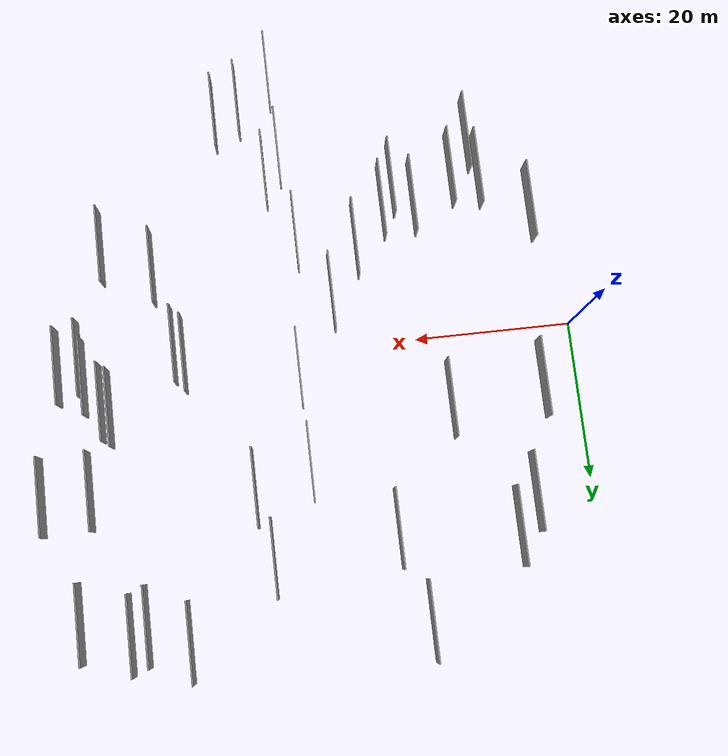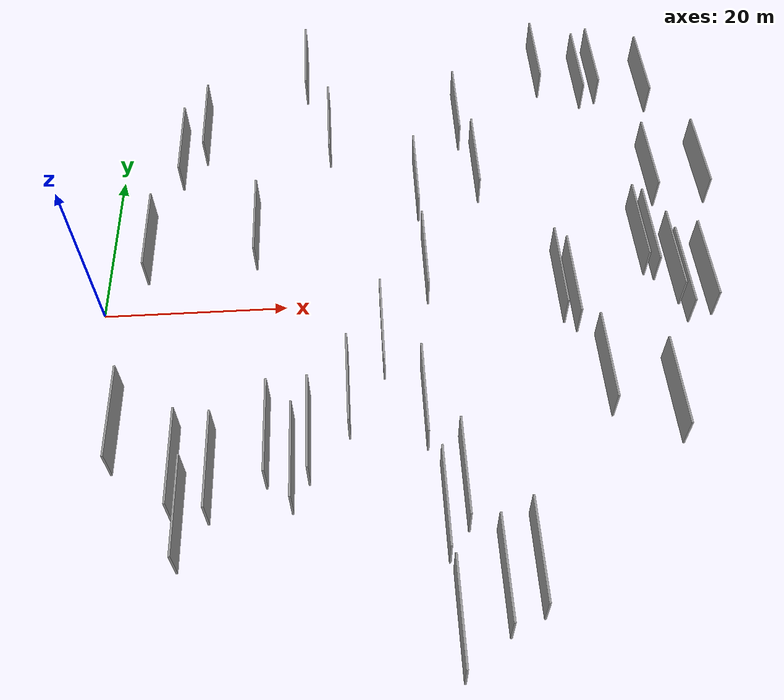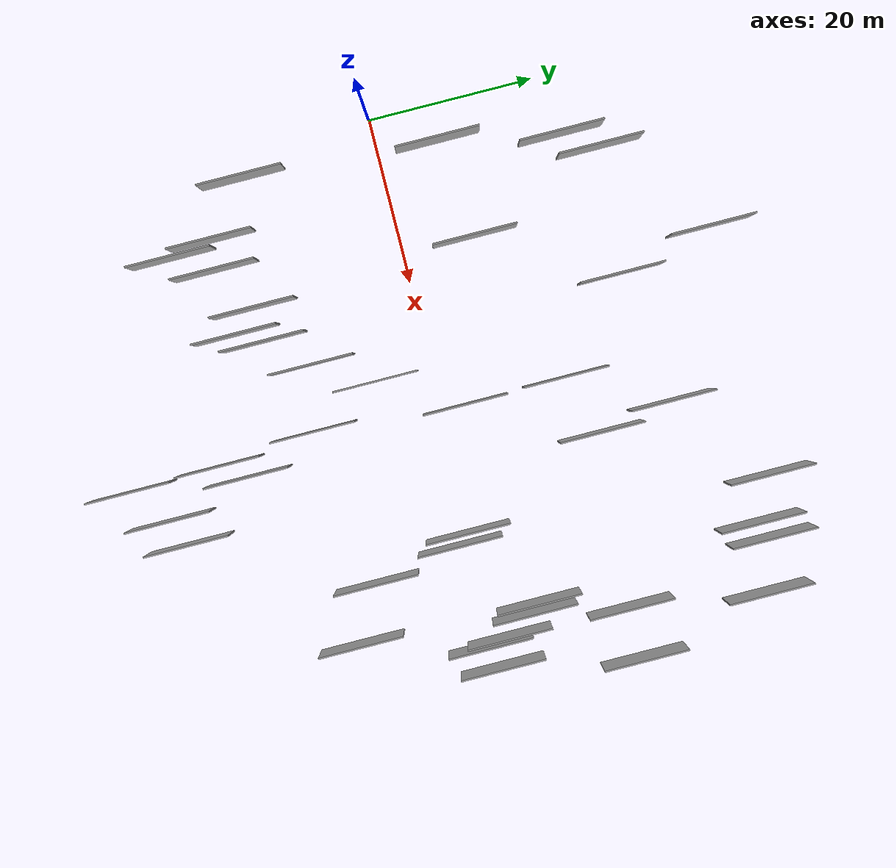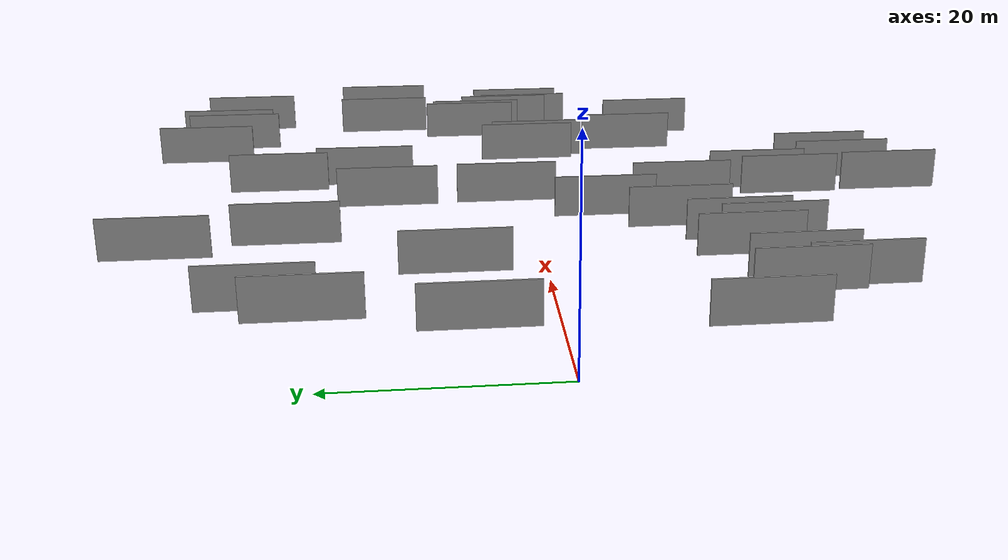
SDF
<sdf version="1.6">
 <world name="default">
  <scene>
   <sky><clouds><speed>12</speed></clouds></sky>
   <ambient>0.4 0.4 0.4 1</ambient>
   <background>0.7 0.7 0.7 1</background>
   <shadows>1</shadows>
  </scene>
  <gravity>0 0 -9.8066</gravity>
  <magnetic_field>6e-06 2.3e-05 -4.2e-05</magnetic_field>
  <physics default="0" name="default_physics" type="ode">
   <ode>
    <solver>
     <type>quick</type>
     <iters>10</iters>
     <sor>1.0</sor>
     <use_dynamic_moi_rescaling>0</use_dynamic_moi_rescaling>
    </solver>
    <constraints>
     <cfm>0</cfm>
     <erp>0.2</erp>
     <contact_max_correcting_vel>100</contact_max_correcting_vel>
     <contact_surface_layer>0.001</contact_surface_layer>
    </constraints>
   </ode>
   <max_step_size>0.004</max_step_size>
   <real_time_factor>1</real_time_factor>
   <real_time_update_rate>250</real_time_update_rate>
  </physics>
  <light name="sun" type="directional">
   <pose>0 0 10 0 0 0</pose>
   <diffuse>0.8 0.8 0.8 1</diffuse>
   <specular>0.2 0.2 0.2 1</specular>
   <attenuation>
    <range>1000</range>
    <constant>0.9</constant>
    <linear>0.01</linear>
    <quadratic>0.001</quadratic>
   </attenuation>
   <direction>-0.5 0.1 -0.9</direction>
  </light>
  <model name="grey_wall_1">
   <static>1</static>
   <pose>13.2933 -21.4593 2.5 0.000000 0.000000 1.570796</pose>
   <link name="link">
    <pose>0 0 2.00 0 0 0</pose>
    <collision name="collision"><geometry><box><size>10.00 0.2 4.00</size></box></geometry></collision>
    <visual name="visual">
     <cast_shadows>0</cast_shadows>
     <geometry><box><size>10.00 0.2 4.00</size></box></geometry>
     <material>
      <script>
       <uri>model://grey_wall/materials/scripts</uri>
       <uri>model://grey_wall/materials/textures</uri>
       <name>vrc/grey_wall</name>
      </script>
     </material>
    </visual>
   </link>
  </model>
  <model name="grey_wall_2">
   <static>1</static>
   <pose>65.8893 -0.6012 2.5 0.000000 0.000000 1.570796</pose>
   <link name="link">
    <pose>0 0 2.00 0 0 0</pose>
    <collision name="collision"><geometry><box><size>10.00 0.2 4.00</size></box></geometry></collision>
    <visual name="visual">
     <cast_shadows>0</cast_shadows>
     <geometry><box><size>10.00 0.2 4.00</size></box></geometry>
     <material>
      <script>
       <uri>model://grey_wall/materials/scripts</uri>
       <uri>model://grey_wall/materials/textures</uri>
       <name>vrc/grey_wall</name>
      </script>
     </material>
    </visual>
   </link>
  </model>
  <model name="grey_wall_3">
   <static>1</static>
   <pose>35.5225 2.7296 2.5 0.000000 0.000000 1.570796</pose>
   <link name="link">
    <pose>0 0 2.00 0 0 0</pose>
    <collision name="collision"><geometry><box><size>10.00 0.2 4.00</size></box></geometry></collision>
    <visual name="visual">
     <cast_shadows>0</cast_shadows>
     <geometry><box><size>10.00 0.2 4.00</size></box></geometry>
     <material>
      <script>
       <uri>model://grey_wall/materials/scripts</uri>
       <uri>model://grey_wall/materials/textures</uri>
       <name>vrc/grey_wall</name>
      </script>
     </material>
    </visual>
   </link>
  </model>
  <model name="grey_wall_4">
   <static>1</static>
   <pose>63.1721 -1.3532 2.5 0.000000 0.000000 1.570796</pose>
   <link name="link">
    <pose>0 0 2.00 0 0 0</pose>
    <collision name="collision"><geometry><box><size>10.00 0.2 4.00</size></box></geometry></collision>
    <visual name="visual">
     <cast_shadows>0</cast_shadows>
     <geometry><box><size>10.00 0.2 4.00</size></box></geometry>
     <material>
      <script>
       <uri>model://grey_wall/materials/scripts</uri>
       <uri>model://grey_wall/materials/textures</uri>
       <name>vrc/grey_wall</name>
      </script>
     </material>
    </visual>
   </link>
  </model>
  <model name="grey_wall_5">
   <static>1</static>
   <pose>7.8919 21.2013 2.5 0.000000 0.000000 1.570796</pose>
   <link name="link">
    <pose>0 0 2.00 0 0 0</pose>
    <collision name="collision"><geometry><box><size>10.00 0.2 4.00</size></box></geometry></collision>
    <visual name="visual">
     <cast_shadows>0</cast_shadows>
     <geometry><box><size>10.00 0.2 4.00</size></box></geometry>
     <material>
      <script>
       <uri>model://grey_wall/materials/scripts</uri>
       <uri>model://grey_wall/materials/textures</uri>
       <name>vrc/grey_wall</name>
      </script>
     </material>
    </visual>
   </link>
  </model>
  <model name="grey_wall_6">
   <static>1</static>
   <pose>35.3623 -26.5021 2.5 0.000000 0.000000 1.570796</pose>
   <link name="link">
    <pose>0 0 2.00 0 0 0</pose>
    <collision name="collision"><geometry><box><size>10.00 0.2 4.00</size></box></geometry></collision>
    <visual name="visual">
     <cast_shadows>0</cast_shadows>
     <geometry><box><size>10.00 0.2 4.00</size></box></geometry>
     <material>
      <script>
       <uri>model://grey_wall/materials/scripts</uri>
       <uri>model://grey_wall/materials/textures</uri>
       <name>vrc/grey_wall</name>
      </script>
     </material>
    </visual>
   </link>
  </model>
  <model name="grey_wall_7">
   <static>1</static>
   <pose>22.6817 -18.0327 2.5 0.000000 0.000000 1.570796</pose>
   <link name="link">
    <pose>0 0 2.00 0 0 0</pose>
    <collision name="collision"><geometry><box><size>10.00 0.2 4.00</size></box></geometry></collision>
    <visual name="visual">
     <cast_shadows>0</cast_shadows>
     <geometry><box><size>10.00 0.2 4.00</size></box></geometry>
     <material>
      <script>
       <uri>model://grey_wall/materials/scripts</uri>
       <uri>model://grey_wall/materials/textures</uri>
       <name>vrc/grey_wall</name>
      </script>
     </material>
    </visual>
   </link>
  </model>
  <model name="grey_wall_8">
   <static>1</static>
   <pose>22.5826 35.2984 2.5 0.000000 0.000000 1.570796</pose>
   <link name="link">
    <pose>0 0 2.00 0 0 0</pose>
    <collision name="collision"><geometry><box><size>10.00 0.2 4.00</size></box></geometry></collision>
    <visual name="visual">
     <cast_shadows>0</cast_shadows>
     <geometry><box><size>10.00 0.2 4.00</size></box></geometry>
     <material>
      <script>
       <uri>model://grey_wall/materials/scripts</uri>
       <uri>model://grey_wall/materials/textures</uri>
       <name>vrc/grey_wall</name>
      </script>
     </material>
    </visual>
   </link>
  </model>
  <model name="grey_wall_9">
   <static>1</static>
   <pose>30.3862 -6.6031 2.5 0.000000 0.000000 1.570796</pose>
   <link name="link">
    <pose>0 0 2.00 0 0 0</pose>
    <collision name="collision"><geometry><box><size>10.00 0.2 4.00</size></box></geometry></collision>
    <visual name="visual">
     <cast_shadows>0</cast_shadows>
     <geometry><box><size>10.00 0.2 4.00</size></box></geometry>
     <material>
      <script>
       <uri>model://grey_wall/materials/scripts</uri>
       <uri>model://grey_wall/materials/textures</uri>
       <name>vrc/grey_wall</name>
      </script>
     </material>
    </visual>
   </link>
  </model>
  <model name="grey_wall_10">
   <static>1</static>
   <pose>34.2135 -14.9727 2.5 0.000000 0.000000 1.570796</pose>
   <link name="link">
    <pose>0 0 2.00 0 0 0</pose>
    <collision name="collision"><geometry><box><size>10.00 0.2 4.00</size></box></geometry></collision>
    <visual name="visual">
     <cast_shadows>0</cast_shadows>
     <geometry><box><size>10.00 0.2 4.00</size></box></geometry>
     <material>
      <script>
       <uri>model://grey_wall/materials/scripts</uri>
       <uri>model://grey_wall/materials/textures</uri>
       <name>vrc/grey_wall</name>
      </script>
     </material>
    </visual>
   </link>
  </model>
  <model name="grey_wall_11">
   <static>1</static>
   <pose>60.7117 4.4889 2.5 0.000000 0.000000 1.570796</pose>
   <link name="link">
    <pose>0 0 2.00 0 0 0</pose>
    <collision name="collision"><geometry><box><size>10.00 0.2 4.00</size></box></geometry></collision>
    <visual name="visual">
     <cast_shadows>0</cast_shadows>
     <geometry><box><size>10.00 0.2 4.00</size></box></geometry>
     <material>
      <script>
       <uri>model://grey_wall/materials/scripts</uri>
       <uri>model://grey_wall/materials/textures</uri>
       <name>vrc/grey_wall</name>
      </script>
     </material>
    </visual>
   </link>
  </model>
  <model name="grey_wall_12">
   <static>1</static>
   <pose>40.0495 -33.5827 2.5 0.000000 0.000000 1.570796</pose>
   <link name="link">
    <pose>0 0 2.00 0 0 0</pose>
    <collision name="collision"><geometry><box><size>10.00 0.2 4.00</size></box></geometry></collision>
    <visual name="visual">
     <cast_shadows>0</cast_shadows>
     <geometry><box><size>10.00 0.2 4.00</size></box></geometry>
     <material>
      <script>
       <uri>model://grey_wall/materials/scripts</uri>
       <uri>model://grey_wall/materials/textures</uri>
       <name>vrc/grey_wall</name>
      </script>
     </material>
    </visual>
   </link>
  </model>
  <model name="grey_wall_13">
   <static>1</static>
   <pose>26.6444 -13.2926 2.5 0.000000 0.000000 1.570796</pose>
   <link name="link">
    <pose>0 0 2.00 0 0 0</pose>
    <collision name="collision"><geometry><box><size>10.00 0.2 4.00</size></box></geometry></collision>
    <visual name="visual">
     <cast_shadows>0</cast_shadows>
     <geometry><box><size>10.00 0.2 4.00</size></box></geometry>
     <material>
      <script>
       <uri>model://grey_wall/materials/scripts</uri>
       <uri>model://grey_wall/materials/textures</uri>
       <name>vrc/grey_wall</name>
      </script>
     </material>
    </visual>
   </link>
  </model>
  <model name="grey_wall_14">
   <static>1</static>
   <pose>59.3404 -15.7115 2.5 0.000000 0.000000 1.570796</pose>
   <link name="link">
    <pose>0 0 2.00 0 0 0</pose>
    <collision name="collision"><geometry><box><size>10.00 0.2 4.00</size></box></geometry></collision>
    <visual name="visual">
     <cast_shadows>0</cast_shadows>
     <geometry><box><size>10.00 0.2 4.00</size></box></geometry>
     <material>
      <script>
       <uri>model://grey_wall/materials/scripts</uri>
       <uri>model://grey_wall/materials/textures</uri>
       <name>vrc/grey_wall</name>
      </script>
     </material>
    </visual>
   </link>
  </model>
  <model name="grey_wall_15">
   <static>1</static>
   <pose>25.3416 23.9030 2.5 0.000000 0.000000 1.570796</pose>
   <link name="link">
    <pose>0 0 2.00 0 0 0</pose>
    <collision name="collision"><geometry><box><size>10.00 0.2 4.00</size></box></geometry></collision>
    <visual name="visual">
     <cast_shadows>0</cast_shadows>
     <geometry><box><size>10.00 0.2 4.00</size></box></geometry>
     <material>
      <script>
       <uri>model://grey_wall/materials/scripts</uri>
       <uri>model://grey_wall/materials/textures</uri>
       <name>vrc/grey_wall</name>
      </script>
     </material>
    </visual>
   </link>
  </model>
  <model name="grey_wall_16">
   <static>1</static>
   <pose>43.2343 -32.1245 2.5 0.000000 0.000000 1.570796</pose>
   <link name="link">
    <pose>0 0 2.00 0 0 0</pose>
    <collision name="collision"><geometry><box><size>10.00 0.2 4.00</size></box></geometry></collision>
    <visual name="visual">
     <cast_shadows>0</cast_shadows>
     <geometry><box><size>10.00 0.2 4.00</size></box></geometry>
     <material>
      <script>
       <uri>model://grey_wall/materials/scripts</uri>
       <uri>model://grey_wall/materials/textures</uri>
       <name>vrc/grey_wall</name>
      </script>
     </material>
    </visual>
   </link>
  </model>
  <model name="grey_wall_17">
   <static>1</static>
   <pose>52.9444 -12.3076 2.5 0.000000 0.000000 1.570796</pose>
   <link name="link">
    <pose>0 0 2.00 0 0 0</pose>
    <collision name="collision"><geometry><box><size>10.00 0.2 4.00</size></box></geometry></collision>
    <visual name="visual">
     <cast_shadows>0</cast_shadows>
     <geometry><box><size>10.00 0.2 4.00</size></box></geometry>
     <material>
      <script>
       <uri>model://grey_wall/materials/scripts</uri>
       <uri>model://grey_wall/materials/textures</uri>
       <name>vrc/grey_wall</name>
      </script>
     </material>
    </visual>
   </link>
  </model>
  <model name="grey_wall_18">
   <static>1</static>
   <pose>21.1106 -20.9170 2.5 0.000000 0.000000 1.570796</pose>
   <link name="link">
    <pose>0 0 2.00 0 0 0</pose>
    <collision name="collision"><geometry><box><size>10.00 0.2 4.00</size></box></geometry></collision>
    <visual name="visual">
     <cast_shadows>0</cast_shadows>
     <geometry><box><size>10.00 0.2 4.00</size></box></geometry>
     <material>
      <script>
       <uri>model://grey_wall/materials/scripts</uri>
       <uri>model://grey_wall/materials/textures</uri>
       <name>vrc/grey_wall</name>
      </script>
     </material>
    </visual>
   </link>
  </model>
  <model name="grey_wall_19">
   <static>1</static>
   <pose>59.7112 5.2512 2.5 0.000000 0.000000 1.570796</pose>
   <link name="link">
    <pose>0 0 2.00 0 0 0</pose>
    <collision name="collision"><geometry><box><size>10.00 0.2 4.00</size></box></geometry></collision>
    <visual name="visual">
     <cast_shadows>0</cast_shadows>
     <geometry><box><size>10.00 0.2 4.00</size></box></geometry>
     <material>
      <script>
       <uri>model://grey_wall/materials/scripts</uri>
       <uri>model://grey_wall/materials/textures</uri>
       <name>vrc/grey_wall</name>
      </script>
     </material>
    </visual>
   </link>
  </model>
  <model name="grey_wall_20">
   <static>1</static>
   <pose>18.6357 -18.1780 2.5 0.000000 0.000000 1.570796</pose>
   <link name="link">
    <pose>0 0 2.00 0 0 0</pose>
    <collision name="collision"><geometry><box><size>10.00 0.2 4.00</size></box></geometry></collision>
    <visual name="visual">
     <cast_shadows>0</cast_shadows>
     <geometry><box><size>10.00 0.2 4.00</size></box></geometry>
     <material>
      <script>
       <uri>model://grey_wall/materials/scripts</uri>
       <uri>model://grey_wall/materials/textures</uri>
       <name>vrc/grey_wall</name>
      </script>
     </material>
    </visual>
   </link>
  </model>
  <model name="grey_wall_21">
   <static>1</static>
   <pose>62.7009 1.0073 2.5 0.000000 0.000000 1.570796</pose>
   <link name="link">
    <pose>0 0 2.00 0 0 0</pose>
    <collision name="collision"><geometry><box><size>10.00 0.2 4.00</size></box></geometry></collision>
    <visual name="visual">
     <cast_shadows>0</cast_shadows>
     <geometry><box><size>10.00 0.2 4.00</size></box></geometry>
     <material>
      <script>
       <uri>model://grey_wall/materials/scripts</uri>
       <uri>model://grey_wall/materials/textures</uri>
       <name>vrc/grey_wall</name>
      </script>
     </material>
    </visual>
   </link>
  </model>
  <model name="grey_wall_22">
   <static>1</static>
   <pose>57.0544 32.3038 2.5 0.000000 0.000000 1.570796</pose>
   <link name="link">
    <pose>0 0 2.00 0 0 0</pose>
    <collision name="collision"><geometry><box><size>10.00 0.2 4.00</size></box></geometry></collision>
    <visual name="visual">
     <cast_shadows>0</cast_shadows>
     <geometry><box><size>10.00 0.2 4.00</size></box></geometry>
     <material>
      <script>
       <uri>model://grey_wall/materials/scripts</uri>
       <uri>model://grey_wall/materials/textures</uri>
       <name>vrc/grey_wall</name>
      </script>
     </material>
    </visual>
   </link>
  </model>
  <model name="grey_wall_23">
   <static>1</static>
   <pose>49.9016 -0.6563 2.5 0.000000 0.000000 1.570796</pose>
   <link name="link">
    <pose>0 0 2.00 0 0 0</pose>
    <collision name="collision"><geometry><box><size>10.00 0.2 4.00</size></box></geometry></collision>
    <visual name="visual">
     <cast_shadows>0</cast_shadows>
     <geometry><box><size>10.00 0.2 4.00</size></box></geometry>
     <material>
      <script>
       <uri>model://grey_wall/materials/scripts</uri>
       <uri>model://grey_wall/materials/textures</uri>
       <name>vrc/grey_wall</name>
      </script>
     </material>
    </visual>
   </link>
  </model>
  <model name="grey_wall_24">
   <static>1</static>
   <pose>40.9804 25.8754 2.5 0.000000 0.000000 1.570796</pose>
   <link name="link">
    <pose>0 0 2.00 0 0 0</pose>
    <collision name="collision"><geometry><box><size>10.00 0.2 4.00</size></box></geometry></collision>
    <visual name="visual">
     <cast_shadows>0</cast_shadows>
     <geometry><box><size>10.00 0.2 4.00</size></box></geometry>
     <material>
      <script>
       <uri>model://grey_wall/materials/scripts</uri>
       <uri>model://grey_wall/materials/textures</uri>
       <name>vrc/grey_wall</name>
      </script>
     </material>
    </visual>
   </link>
  </model>
  <model name="grey_wall_25">
   <static>1</static>
   <pose>37.3900 -23.6166 2.5 0.000000 0.000000 1.570796</pose>
   <link name="link">
    <pose>0 0 2.00 0 0 0</pose>
    <collision name="collision"><geometry><box><size>10.00 0.2 4.00</size></box></geometry></collision>
    <visual name="visual">
     <cast_shadows>0</cast_shadows>
     <geometry><box><size>10.00 0.2 4.00</size></box></geometry>
     <material>
      <script>
       <uri>model://grey_wall/materials/scripts</uri>
       <uri>model://grey_wall/materials/textures</uri>
       <name>vrc/grey_wall</name>
      </script>
     </material>
    </visual>
   </link>
  </model>
  <model name="grey_wall_26">
   <static>1</static>
   <pose>35.6978 -37.1457 2.5 0.000000 0.000000 1.570796</pose>
   <link name="link">
    <pose>0 0 2.00 0 0 0</pose>
    <collision name="collision"><geometry><box><size>10.00 0.2 4.00</size></box></geometry></collision>
    <visual name="visual">
     <cast_shadows>0</cast_shadows>
     <geometry><box><size>10.00 0.2 4.00</size></box></geometry>
     <material>
      <script>
       <uri>model://grey_wall/materials/scripts</uri>
       <uri>model://grey_wall/materials/textures</uri>
       <name>vrc/grey_wall</name>
      </script>
     </material>
    </visual>
   </link>
  </model>
  <model name="grey_wall_27">
   <static>1</static>
   <pose>5.0673 7.2114 2.5 0.000000 0.000000 1.570796</pose>
   <link name="link">
    <pose>0 0 2.00 0 0 0</pose>
    <collision name="collision"><geometry><box><size>10.00 0.2 4.00</size></box></geometry></collision>
    <visual name="visual">
     <cast_shadows>0</cast_shadows>
     <geometry><box><size>10.00 0.2 4.00</size></box></geometry>
     <material>
      <script>
       <uri>model://grey_wall/materials/scripts</uri>
       <uri>model://grey_wall/materials/textures</uri>
       <name>vrc/grey_wall</name>
      </script>
     </material>
    </visual>
   </link>
  </model>
  <model name="grey_wall_28">
   <static>1</static>
   <pose>16.9035 8.6126 2.5 0.000000 0.000000 1.570796</pose>
   <link name="link">
    <pose>0 0 2.00 0 0 0</pose>
    <collision name="collision"><geometry><box><size>10.00 0.2 4.00</size></box></geometry></collision>
    <visual name="visual">
     <cast_shadows>0</cast_shadows>
     <geometry><box><size>10.00 0.2 4.00</size></box></geometry>
     <material>
      <script>
       <uri>model://grey_wall/materials/scripts</uri>
       <uri>model://grey_wall/materials/textures</uri>
       <name>vrc/grey_wall</name>
      </script>
     </material>
    </visual>
   </link>
  </model>
  <model name="grey_wall_29">
   <static>1</static>
   <pose>9.8022 -20.9420 2.5 0.000000 0.000000 1.570796</pose>
   <link name="link">
    <pose>0 0 2.00 0 0 0</pose>
    <collision name="collision"><geometry><box><size>10.00 0.2 4.00</size></box></geometry></collision>
    <visual name="visual">
     <cast_shadows>0</cast_shadows>
     <geometry><box><size>10.00 0.2 4.00</size></box></geometry>
     <material>
      <script>
       <uri>model://grey_wall/materials/scripts</uri>
       <uri>model://grey_wall/materials/textures</uri>
       <name>vrc/grey_wall</name>
      </script>
     </material>
    </visual>
   </link>
  </model>
  <model name="grey_wall_30">
   <static>1</static>
   <pose>59.0740 33.1416 2.5 0.000000 0.000000 1.570796</pose>
   <link name="link">
    <pose>0 0 2.00 0 0 0</pose>
    <collision name="collision"><geometry><box><size>10.00 0.2 4.00</size></box></geometry></collision>
    <visual name="visual">
     <cast_shadows>0</cast_shadows>
     <geometry><box><size>10.00 0.2 4.00</size></box></geometry>
     <material>
      <script>
       <uri>model://grey_wall/materials/scripts</uri>
       <uri>model://grey_wall/materials/textures</uri>
       <name>vrc/grey_wall</name>
      </script>
     </material>
    </visual>
   </link>
  </model>
  <model name="grey_wall_31">
   <static>1</static>
   <pose>10.6787 -25.9665 2.5 0.000000 0.000000 1.570796</pose>
   <link name="link">
    <pose>0 0 2.00 0 0 0</pose>
    <collision name="collision"><geometry><box><size>10.00 0.2 4.00</size></box></geometry></collision>
    <visual name="visual">
     <cast_shadows>0</cast_shadows>
     <geometry><box><size>10.00 0.2 4.00</size></box></geometry>
     <material>
      <script>
       <uri>model://grey_wall/materials/scripts</uri>
       <uri>model://grey_wall/materials/textures</uri>
       <name>vrc/grey_wall</name>
      </script>
     </material>
    </visual>
   </link>
  </model>
  <model name="grey_wall_32">
   <static>1</static>
   <pose>65.1449 31.1943 2.5 0.000000 0.000000 1.570796</pose>
   <link name="link">
    <pose>0 0 2.00 0 0 0</pose>
    <collision name="collision"><geometry><box><size>10.00 0.2 4.00</size></box></geometry></collision>
    <visual name="visual">
     <cast_shadows>0</cast_shadows>
     <geometry><box><size>10.00 0.2 4.00</size></box></geometry>
     <material>
      <script>
       <uri>model://grey_wall/materials/scripts</uri>
       <uri>model://grey_wall/materials/textures</uri>
       <name>vrc/grey_wall</name>
      </script>
     </material>
    </visual>
   </link>
  </model>
  <model name="grey_wall_33">
   <static>1</static>
   <pose>68.9094 15.4887 2.5 0.000000 0.000000 1.570796</pose>
   <link name="link">
    <pose>0 0 2.00 0 0 0</pose>
    <collision name="collision"><geometry><box><size>10.00 0.2 4.00</size></box></geometry></collision>
    <visual name="visual">
     <cast_shadows>0</cast_shadows>
     <geometry><box><size>10.00 0.2 4.00</size></box></geometry>
     <material>
      <script>
       <uri>model://grey_wall/materials/scripts</uri>
       <uri>model://grey_wall/materials/textures</uri>
       <name>vrc/grey_wall</name>
      </script>
     </material>
    </visual>
   </link>
  </model>
  <model name="grey_wall_34">
   <static>1</static>
   <pose>51.9863 34.7349 2.5 0.000000 0.000000 1.570796</pose>
   <link name="link">
    <pose>0 0 2.00 0 0 0</pose>
    <collision name="collision"><geometry><box><size>10.00 0.2 4.00</size></box></geometry></collision>
    <visual name="visual">
     <cast_shadows>0</cast_shadows>
     <geometry><box><size>10.00 0.2 4.00</size></box></geometry>
     <material>
      <script>
       <uri>model://grey_wall/materials/scripts</uri>
       <uri>model://grey_wall/materials/textures</uri>
       <name>vrc/grey_wall</name>
      </script>
     </material>
    </visual>
   </link>
  </model>
  <model name="grey_wall_35">
   <static>1</static>
   <pose>51.0804 -1.8878 2.5 0.000000 0.000000 1.570796</pose>
   <link name="link">
    <pose>0 0 2.00 0 0 0</pose>
    <collision name="collision"><geometry><box><size>10.00 0.2 4.00</size></box></geometry></collision>
    <visual name="visual">
     <cast_shadows>0</cast_shadows>
     <geometry><box><size>10.00 0.2 4.00</size></box></geometry>
     <material>
      <script>
       <uri>model://grey_wall/materials/scripts</uri>
       <uri>model://grey_wall/materials/textures</uri>
       <name>vrc/grey_wall</name>
      </script>
     </material>
    </visual>
   </link>
  </model>
  <model name="grey_wall_36">
   <static>1</static>
   <pose>42.4856 17.1071 2.5 0.000000 0.000000 1.570796</pose>
   <link name="link">
    <pose>0 0 2.00 0 0 0</pose>
    <collision name="collision"><geometry><box><size>10.00 0.2 4.00</size></box></geometry></collision>
    <visual name="visual">
     <cast_shadows>0</cast_shadows>
     <geometry><box><size>10.00 0.2 4.00</size></box></geometry>
     <material>
      <script>
       <uri>model://grey_wall/materials/scripts</uri>
       <uri>model://grey_wall/materials/textures</uri>
       <name>vrc/grey_wall</name>
      </script>
     </material>
    </visual>
   </link>
  </model>
  <model name="grey_wall_37">
   <static>1</static>
   <pose>10.4604 25.1863 2.5 0.000000 0.000000 1.570796</pose>
   <link name="link">
    <pose>0 0 2.00 0 0 0</pose>
    <collision name="collision"><geometry><box><size>10.00 0.2 4.00</size></box></geometry></collision>
    <visual name="visual">
     <cast_shadows>0</cast_shadows>
     <geometry><box><size>10.00 0.2 4.00</size></box></geometry>
     <material>
      <script>
       <uri>model://grey_wall/materials/scripts</uri>
       <uri>model://grey_wall/materials/textures</uri>
       <name>vrc/grey_wall</name>
      </script>
     </material>
    </visual>
   </link>
  </model>
  <model name="grey_wall_38">
   <static>1</static>
   <pose>35.3158 14.6844 2.5 0.000000 0.000000 1.570796</pose>
   <link name="link">
    <pose>0 0 2.00 0 0 0</pose>
    <collision name="collision"><geometry><box><size>10.00 0.2 4.00</size></box></geometry></collision>
    <visual name="visual">
     <cast_shadows>0</cast_shadows>
     <geometry><box><size>10.00 0.2 4.00</size></box></geometry>
     <material>
      <script>
       <uri>model://grey_wall/materials/scripts</uri>
       <uri>model://grey_wall/materials/textures</uri>
       <name>vrc/grey_wall</name>
      </script>
     </material>
    </visual>
   </link>
  </model>
  <model name="grey_wall_39">
   <static>1</static>
   <pose>62.8646 15.3392 2.5 0.000000 0.000000 1.570796</pose>
   <link name="link">
    <pose>0 0 2.00 0 0 0</pose>
    <collision name="collision"><geometry><box><size>10.00 0.2 4.00</size></box></geometry></collision>
    <visual name="visual">
     <cast_shadows>0</cast_shadows>
     <geometry><box><size>10.00 0.2 4.00</size></box></geometry>
     <material>
      <script>
       <uri>model://grey_wall/materials/scripts</uri>
       <uri>model://grey_wall/materials/textures</uri>
       <name>vrc/grey_wall</name>
      </script>
     </material>
    </visual>
   </link>
  </model>
  <model name="grey_wall_40">
   <static>1</static>
   <pose>3.6465 -15.7939 2.5 0.000000 0.000000 1.570796</pose>
   <link name="link">
    <pose>0 0 2.00 0 0 0</pose>
    <collision name="collision"><geometry><box><size>10.00 0.2 4.00</size></box></geometry></collision>
    <visual name="visual">
     <cast_shadows>0</cast_shadows>
     <geometry><box><size>10.00 0.2 4.00</size></box></geometry>
     <material>
      <script>
       <uri>model://grey_wall/materials/scripts</uri>
       <uri>model://grey_wall/materials/textures</uri>
       <name>vrc/grey_wall</name>
      </script>
     </material>
    </visual>
   </link>
  </model>
 </world>
</sdf>
